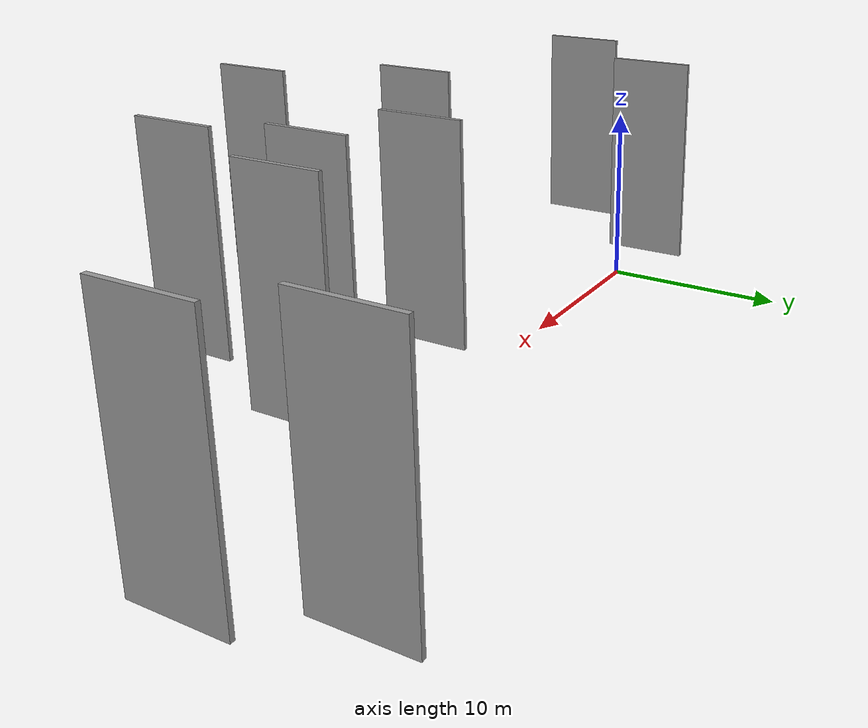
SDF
<sdf version="1.6">
 <world name="default">
  <scene>
   <sky><clouds><speed>12</speed></clouds></sky>
   <ambient>0.4 0.4 0.4 1</ambient>
   <background>0.7 0.7 0.7 1</background>
   <shadows>1</shadows>
  </scene>
  <gravity>0 0 -9.8066</gravity>
  <magnetic_field>6e-06 2.3e-05 -4.2e-05</magnetic_field>
  <physics default="0" name="default_physics" type="ode">
   <ode>
    <solver>
     <type>quick</type>
     <iters>10</iters>
     <sor>1.0</sor>
     <use_dynamic_moi_rescaling>0</use_dynamic_moi_rescaling>
    </solver>
    <constraints>
     <cfm>0</cfm>
     <erp>0.2</erp>
     <contact_max_correcting_vel>100</contact_max_correcting_vel>
     <contact_surface_layer>0.001</contact_surface_layer>
    </constraints>
   </ode>
   <max_step_size>0.004</max_step_size>
   <real_time_factor>1</real_time_factor>
   <real_time_update_rate>250</real_time_update_rate>
  </physics>
  <light name="sun" type="directional">
   <pose>0 0 10 0 0 0</pose>
   <diffuse>0.8 0.8 0.8 1</diffuse>
   <specular>0.2 0.2 0.2 1</specular>
   <attenuation>
    <range>1000</range>
    <constant>0.9</constant>
    <linear>0.01</linear>
    <quadratic>0.001</quadratic>
   </attenuation>
   <direction>-0.5 0.1 -0.9</direction>
  </light>
  <model name="grey_wall_1">
   <static>1</static>
   <pose>3.3411 -0.8479 5.0 0.000000 0.000000 1.570796</pose>
   <link name="link">
    <pose>0 0 5.00 0 0 0</pose>
    <collision name="collision"><geometry><box><size>4.00 0.2 10.00</size></box></geometry></collision>
    <visual name="visual">
     <cast_shadows>0</cast_shadows>
     <geometry><box><size>4.00 0.2 10.00</size></box></geometry>
     <material>
      <script>
       <uri>model://grey_wall/materials/scripts</uri>
       <uri>model://grey_wall/materials/textures</uri>
       <name>vrc/grey_wall</name>
      </script>
     </material>
    </visual>
   </link>
  </model>
  <model name="grey_wall_2">
   <static>1</static>
   <pose>8.0205 5.2448 5.0 0.000000 0.000000 1.570796</pose>
   <link name="link">
    <pose>0 0 5.00 0 0 0</pose>
    <collision name="collision"><geometry><box><size>4.00 0.2 10.00</size></box></geometry></collision>
    <visual name="visual">
     <cast_shadows>0</cast_shadows>
     <geometry><box><size>4.00 0.2 10.00</size></box></geometry>
     <material>
      <script>
       <uri>model://grey_wall/materials/scripts</uri>
       <uri>model://grey_wall/materials/textures</uri>
       <name>vrc/grey_wall</name>
      </script>
     </material>
    </visual>
   </link>
  </model>
  <model name="grey_wall_3">
   <static>1</static>
   <pose>31.7053 1.4209 5.0 0.000000 0.000000 1.570796</pose>
   <link name="link">
    <pose>0 0 5.00 0 0 0</pose>
    <collision name="collision"><geometry><box><size>4.00 0.2 10.00</size></box></geometry></collision>
    <visual name="visual">
     <cast_shadows>0</cast_shadows>
     <geometry><box><size>4.00 0.2 10.00</size></box></geometry>
     <material>
      <script>
       <uri>model://grey_wall/materials/scripts</uri>
       <uri>model://grey_wall/materials/textures</uri>
       <name>vrc/grey_wall</name>
      </script>
     </material>
    </visual>
   </link>
  </model>
  <model name="grey_wall_4">
   <static>1</static>
   <pose>27.3909 -0.8009 5.0 0.000000 0.000000 1.570796</pose>
   <link name="link">
    <pose>0 0 5.00 0 0 0</pose>
    <collision name="collision"><geometry><box><size>4.00 0.2 10.00</size></box></geometry></collision>
    <visual name="visual">
     <cast_shadows>0</cast_shadows>
     <geometry><box><size>4.00 0.2 10.00</size></box></geometry>
     <material>
      <script>
       <uri>model://grey_wall/materials/scripts</uri>
       <uri>model://grey_wall/materials/textures</uri>
       <name>vrc/grey_wall</name>
      </script>
     </material>
    </visual>
   </link>
  </model>
  <model name="grey_wall_5">
   <static>1</static>
   <pose>18.9436 -11.1589 5.0 0.000000 0.000000 1.570796</pose>
   <link name="link">
    <pose>0 0 5.00 0 0 0</pose>
    <collision name="collision"><geometry><box><size>4.00 0.2 10.00</size></box></geometry></collision>
    <visual name="visual">
     <cast_shadows>0</cast_shadows>
     <geometry><box><size>4.00 0.2 10.00</size></box></geometry>
     <material>
      <script>
       <uri>model://grey_wall/materials/scripts</uri>
       <uri>model://grey_wall/materials/textures</uri>
       <name>vrc/grey_wall</name>
      </script>
     </material>
    </visual>
   </link>
  </model>
  <model name="grey_wall_6">
   <static>1</static>
   <pose>40.1883 11.0567 5.0 0.000000 0.000000 1.570796</pose>
   <link name="link">
    <pose>0 0 5.00 0 0 0</pose>
    <collision name="collision"><geometry><box><size>4.00 0.2 10.00</size></box></geometry></collision>
    <visual name="visual">
     <cast_shadows>0</cast_shadows>
     <geometry><box><size>4.00 0.2 10.00</size></box></geometry>
     <material>
      <script>
       <uri>model://grey_wall/materials/scripts</uri>
       <uri>model://grey_wall/materials/textures</uri>
       <name>vrc/grey_wall</name>
      </script>
     </material>
    </visual>
   </link>
  </model>
  <model name="grey_wall_7">
   <static>1</static>
   <pose>42.1287 6.1242 5.0 0.000000 0.000000 1.570796</pose>
   <link name="link">
    <pose>0 0 5.00 0 0 0</pose>
    <collision name="collision"><geometry><box><size>4.00 0.2 10.00</size></box></geometry></collision>
    <visual name="visual">
     <cast_shadows>0</cast_shadows>
     <geometry><box><size>4.00 0.2 10.00</size></box></geometry>
     <material>
      <script>
       <uri>model://grey_wall/materials/scripts</uri>
       <uri>model://grey_wall/materials/textures</uri>
       <name>vrc/grey_wall</name>
      </script>
     </material>
    </visual>
   </link>
  </model>
  <model name="grey_wall_8">
   <static>1</static>
   <pose>15.2898 -4.0826 5.0 0.000000 0.000000 1.570796</pose>
   <link name="link">
    <pose>0 0 5.00 0 0 0</pose>
    <collision name="collision"><geometry><box><size>4.00 0.2 10.00</size></box></geometry></collision>
    <visual name="visual">
     <cast_shadows>0</cast_shadows>
     <geometry><box><size>4.00 0.2 10.00</size></box></geometry>
     <material>
      <script>
       <uri>model://grey_wall/materials/scripts</uri>
       <uri>model://grey_wall/materials/textures</uri>
       <name>vrc/grey_wall</name>
      </script>
     </material>
    </visual>
   </link>
  </model>
  <model name="grey_wall_9">
   <static>1</static>
   <pose>23.2456 1.6613 5.0 0.000000 0.000000 1.570796</pose>
   <link name="link">
    <pose>0 0 5.00 0 0 0</pose>
    <collision name="collision"><geometry><box><size>4.00 0.2 10.00</size></box></geometry></collision>
    <visual name="visual">
     <cast_shadows>0</cast_shadows>
     <geometry><box><size>4.00 0.2 10.00</size></box></geometry>
     <material>
      <script>
       <uri>model://grey_wall/materials/scripts</uri>
       <uri>model://grey_wall/materials/textures</uri>
       <name>vrc/grey_wall</name>
      </script>
     </material>
    </visual>
   </link>
  </model>
  <model name="grey_wall_10">
   <static>1</static>
   <pose>28.9176 -6.2867 5.0 0.000000 0.000000 1.570796</pose>
   <link name="link">
    <pose>0 0 5.00 0 0 0</pose>
    <collision name="collision"><geometry><box><size>4.00 0.2 10.00</size></box></geometry></collision>
    <visual name="visual">
     <cast_shadows>0</cast_shadows>
     <geometry><box><size>4.00 0.2 10.00</size></box></geometry>
     <material>
      <script>
       <uri>model://grey_wall/materials/scripts</uri>
       <uri>model://grey_wall/materials/textures</uri>
       <name>vrc/grey_wall</name>
      </script>
     </material>
    </visual>
   </link>
  </model>
 </world>
</sdf>
